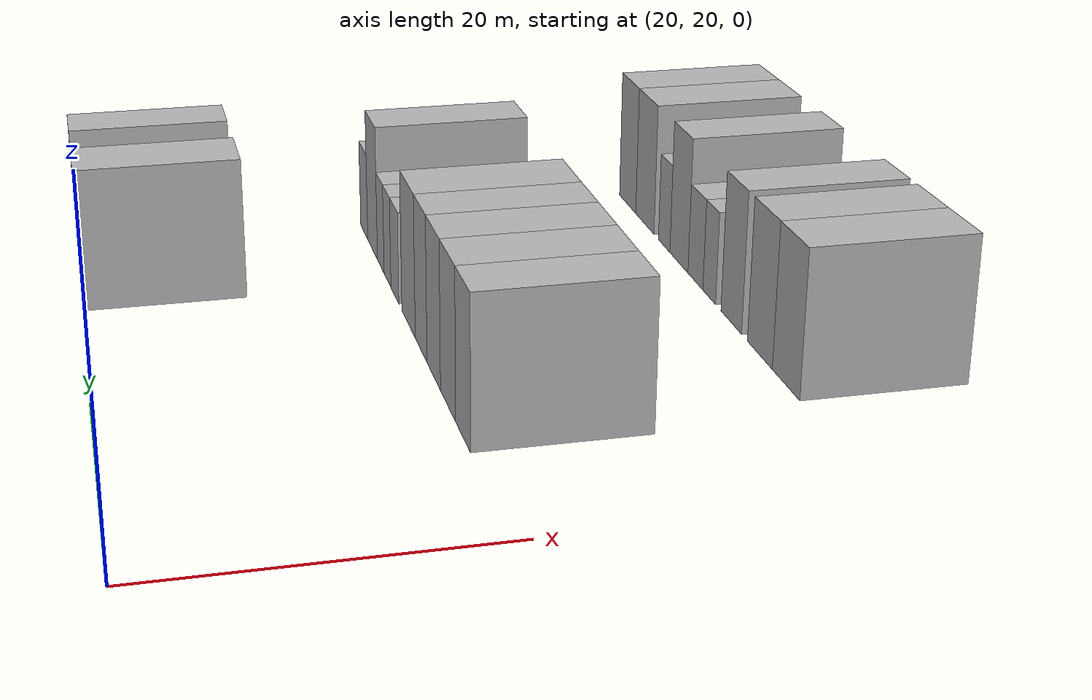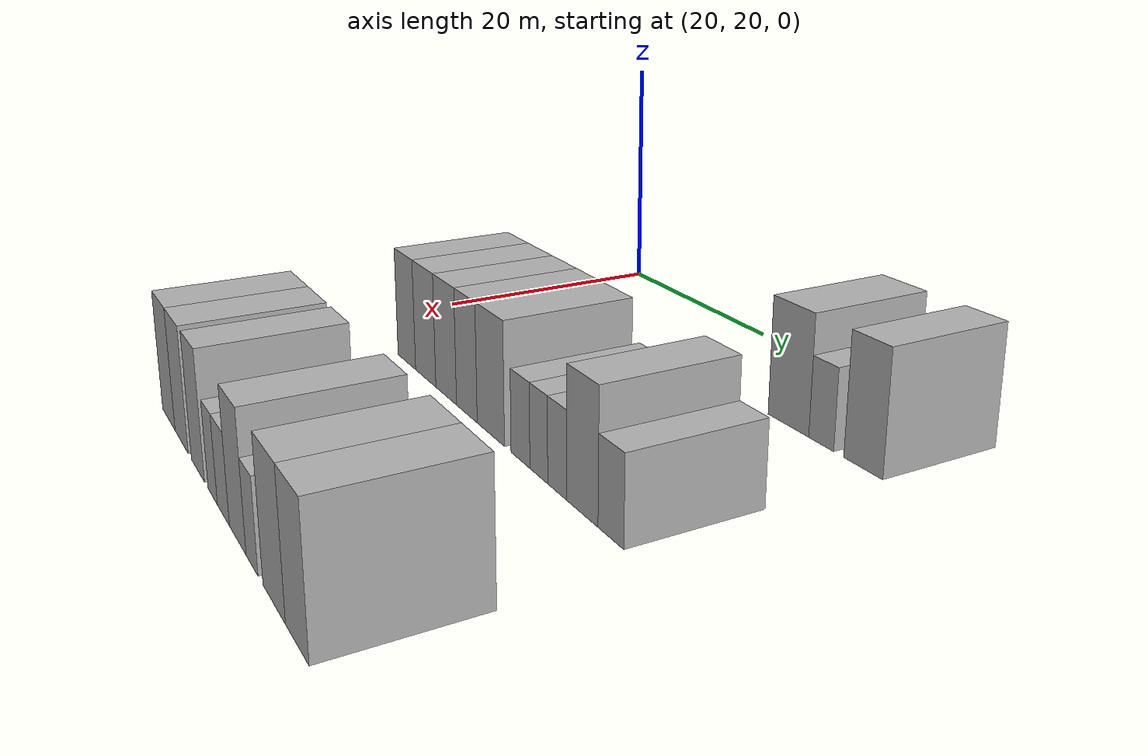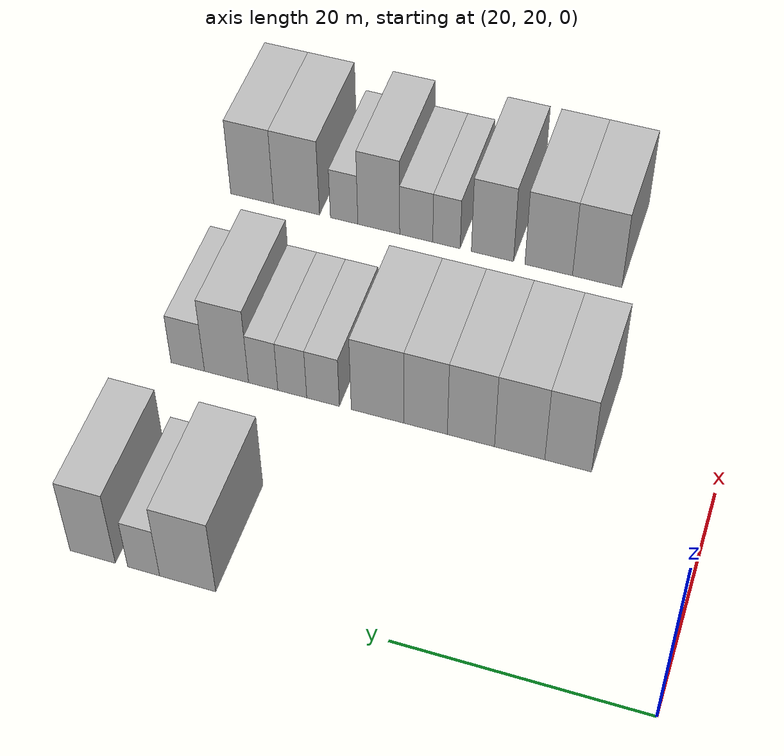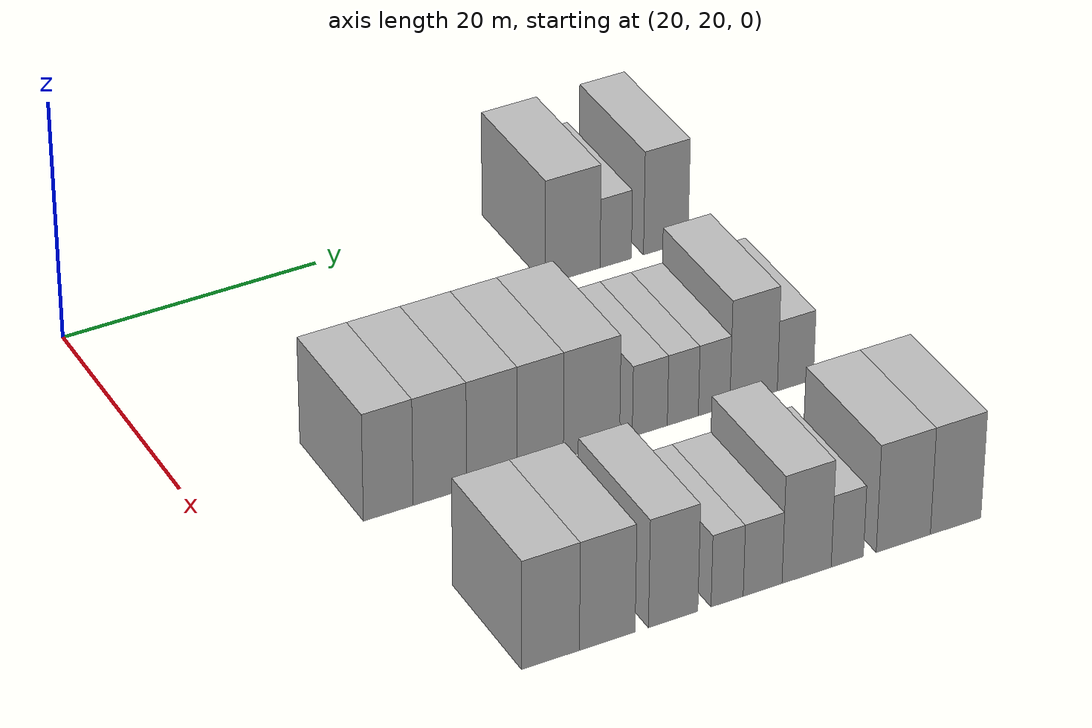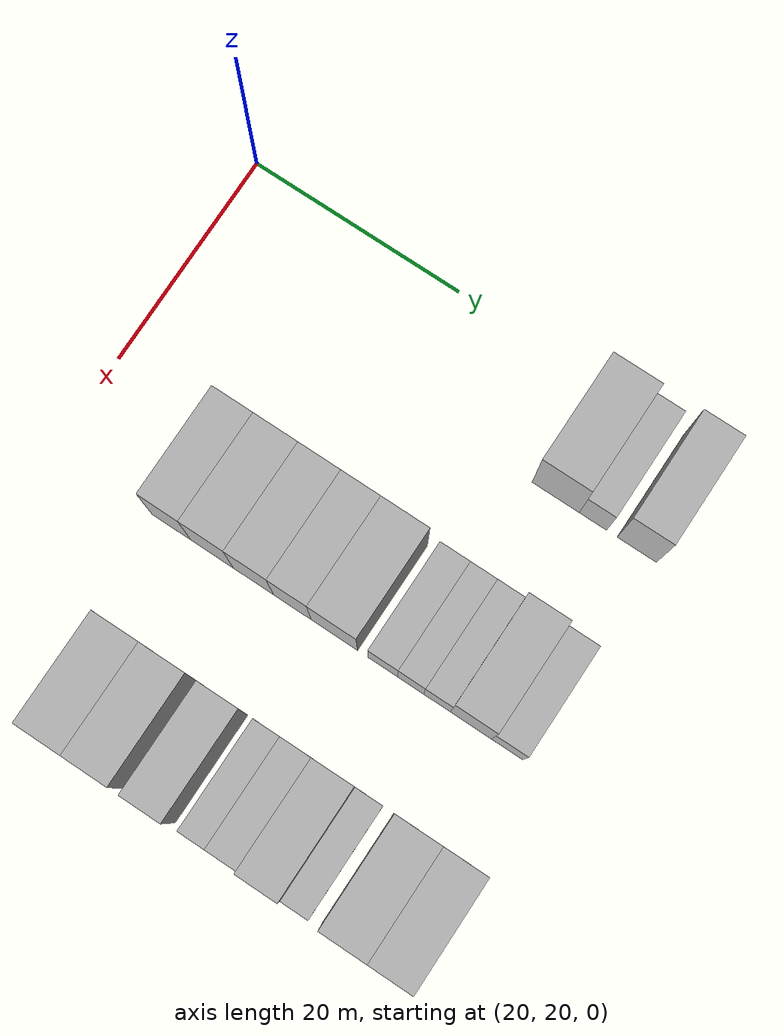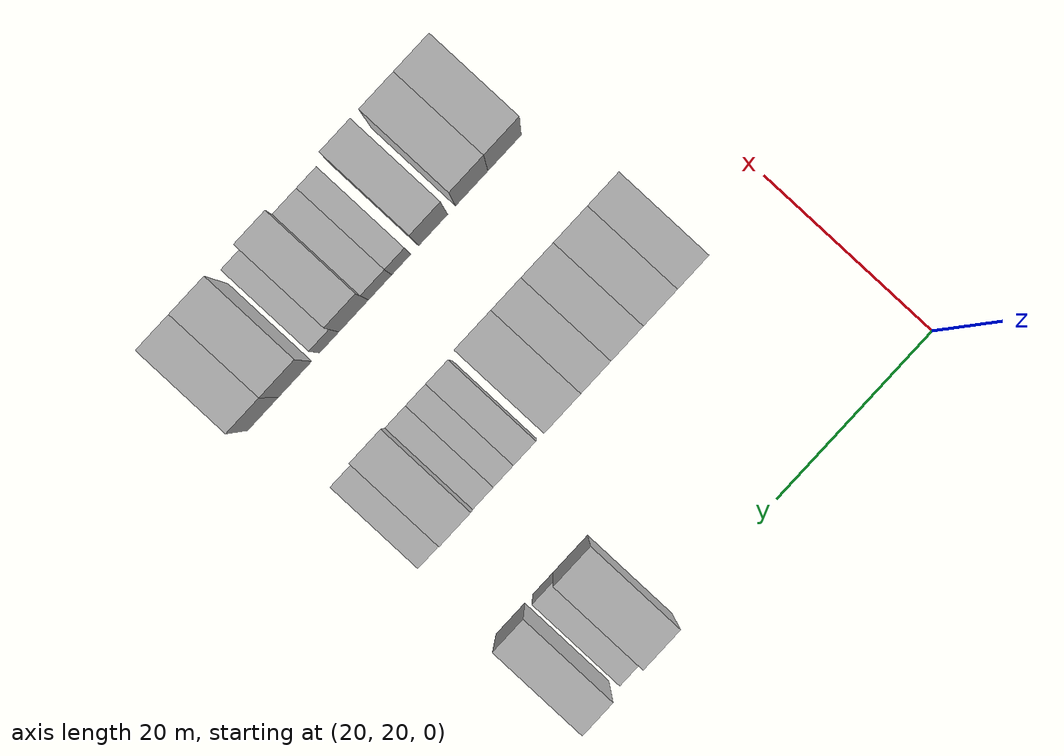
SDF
<sdf version="1.6">
 <world name="default">
  <model name="building_65">
   <static>1</static>
   <pose>25.0000 55.7712 0 0.000000 0.000000 0.000000</pose>
   <link name="link">
    <pose>0 0 4.50 0 0 0</pose>
    <collision name="collision"><geometry><box><size>10.0000 4.4981 9.0000</size></box></geometry></collision>
    <visual name="visual">
     <cast_shadows>0</cast_shadows>
     <geometry><box><size>10.0000 4.4981 9.0000</size></box></geometry>
     <material>
      <script>
       <uri>model://HANNAS_wall/materials/scripts</uri>
       <uri>model://HANNAS_wall/materials/textures</uri>
       <name>vrc/HANNAS_wall</name>
      </script>
     </material>
    </visual>
   </link>
  </model>
  <model name="building_66">
   <static>1</static>
   <pose>25.0000 59.3124 0 0.000000 0.000000 0.000000</pose>
   <link name="link">
    <pose>0 0 3.00 0 0 0</pose>
    <collision name="collision"><geometry><box><size>10.0000 2.5843 6.0000</size></box></geometry></collision>
    <visual name="visual">
     <cast_shadows>0</cast_shadows>
     <geometry><box><size>10.0000 2.5843 6.0000</size></box></geometry>
     <material>
      <script>
       <uri>model://HANNAS_wall/materials/scripts</uri>
       <uri>model://HANNAS_wall/materials/textures</uri>
       <name>vrc/HANNAS_wall</name>
      </script>
     </material>
    </visual>
   </link>
  </model>
  <model name="building_67">
   <static>1</static>
   <pose>25.0000 63.4553 0 0.000000 0.000000 0.000000</pose>
   <link name="link">
    <pose>0 0 4.50 0 0 0</pose>
    <collision name="collision"><geometry><box><size>10.0000 3.7016 9.0000</size></box></geometry></collision>
    <visual name="visual">
     <cast_shadows>0</cast_shadows>
     <geometry><box><size>10.0000 3.7016 9.0000</size></box></geometry>
     <material>
      <script>
       <uri>model://HANNAS_wall/materials/scripts</uri>
       <uri>model://HANNAS_wall/materials/textures</uri>
       <name>vrc/HANNAS_wall</name>
      </script>
     </material>
    </visual>
   </link>
  </model>
  <model name="building_182">
   <static>1</static>
   <pose>44.0000 31.4894 0 0.000000 0.000000 0.000000</pose>
   <link name="link">
    <pose>0 0 4.50 0 0 0</pose>
    <collision name="collision"><geometry><box><size>10.0000 3.7730 9.0000</size></box></geometry></collision>
    <visual name="visual">
     <cast_shadows>0</cast_shadows>
     <geometry><box><size>10.0000 3.7730 9.0000</size></box></geometry>
     <material>
      <script>
       <uri>model://HANNAS_wall/materials/scripts</uri>
       <uri>model://HANNAS_wall/materials/textures</uri>
       <name>vrc/HANNAS_wall</name>
      </script>
     </material>
    </visual>
   </link>
  </model>
  <model name="building_183">
   <static>1</static>
   <pose>44.0000 35.4214 0 0.000000 0.000000 0.000000</pose>
   <link name="link">
    <pose>0 0 4.50 0 0 0</pose>
    <collision name="collision"><geometry><box><size>10.0000 4.0909 9.0000</size></box></geometry></collision>
    <visual name="visual">
     <cast_shadows>0</cast_shadows>
     <geometry><box><size>10.0000 4.0909 9.0000</size></box></geometry>
     <material>
      <script>
       <uri>model://HANNAS_wall/materials/scripts</uri>
       <uri>model://HANNAS_wall/materials/textures</uri>
       <name>vrc/HANNAS_wall</name>
      </script>
     </material>
    </visual>
   </link>
  </model>
  <model name="building_184">
   <static>1</static>
   <pose>44.0000 39.4064 0 0.000000 0.000000 0.000000</pose>
   <link name="link">
    <pose>0 0 4.50 0 0 0</pose>
    <collision name="collision"><geometry><box><size>10.0000 3.8791 9.0000</size></box></geometry></collision>
    <visual name="visual">
     <cast_shadows>0</cast_shadows>
     <geometry><box><size>10.0000 3.8791 9.0000</size></box></geometry>
     <material>
      <script>
       <uri>model://HANNAS_wall/materials/scripts</uri>
       <uri>model://HANNAS_wall/materials/textures</uri>
       <name>vrc/HANNAS_wall</name>
      </script>
     </material>
    </visual>
   </link>
  </model>
  <model name="building_185">
   <static>1</static>
   <pose>44.0000 43.1508 0 0.000000 0.000000 0.000000</pose>
   <link name="link">
    <pose>0 0 4.50 0 0 0</pose>
    <collision name="collision"><geometry><box><size>10.0000 3.6097 9.0000</size></box></geometry></collision>
    <visual name="visual">
     <cast_shadows>0</cast_shadows>
     <geometry><box><size>10.0000 3.6097 9.0000</size></box></geometry>
     <material>
      <script>
       <uri>model://HANNAS_wall/materials/scripts</uri>
       <uri>model://HANNAS_wall/materials/textures</uri>
       <name>vrc/HANNAS_wall</name>
      </script>
     </material>
    </visual>
   </link>
  </model>
  <model name="building_186">
   <static>1</static>
   <pose>44.0000 47.1601 0 0.000000 0.000000 0.000000</pose>
   <link name="link">
    <pose>0 0 4.50 0 0 0</pose>
    <collision name="collision"><geometry><box><size>10.0000 4.4090 9.0000</size></box></geometry></collision>
    <visual name="visual">
     <cast_shadows>0</cast_shadows>
     <geometry><box><size>10.0000 4.4090 9.0000</size></box></geometry>
     <material>
      <script>
       <uri>model://HANNAS_wall/materials/scripts</uri>
       <uri>model://HANNAS_wall/materials/textures</uri>
       <name>vrc/HANNAS_wall</name>
      </script>
     </material>
    </visual>
   </link>
  </model>
  <model name="building_187">
   <static>1</static>
   <pose>44.0000 51.7505 0 0.000000 0.000000 0.000000</pose>
   <link name="link">
    <pose>0 0 3.00 0 0 0</pose>
    <collision name="collision"><geometry><box><size>10.0000 2.7717 6.0000</size></box></geometry></collision>
    <visual name="visual">
     <cast_shadows>0</cast_shadows>
     <geometry><box><size>10.0000 2.7717 6.0000</size></box></geometry>
     <material>
      <script>
       <uri>model://HANNAS_wall/materials/scripts</uri>
       <uri>model://HANNAS_wall/materials/textures</uri>
       <name>vrc/HANNAS_wall</name>
      </script>
     </material>
    </visual>
   </link>
  </model>
  <model name="building_188">
   <static>1</static>
   <pose>44.0000 54.3708 0 0.000000 0.000000 0.000000</pose>
   <link name="link">
    <pose>0 0 3.00 0 0 0</pose>
    <collision name="collision"><geometry><box><size>10.0000 2.4689 6.0000</size></box></geometry></collision>
    <visual name="visual">
     <cast_shadows>0</cast_shadows>
     <geometry><box><size>10.0000 2.4689 6.0000</size></box></geometry>
     <material>
      <script>
       <uri>model://HANNAS_wall/materials/scripts</uri>
       <uri>model://HANNAS_wall/materials/textures</uri>
       <name>vrc/HANNAS_wall</name>
      </script>
     </material>
    </visual>
   </link>
  </model>
  <model name="building_189">
   <static>1</static>
   <pose>44.0000 56.8667 0 0.000000 0.000000 0.000000</pose>
   <link name="link">
    <pose>0 0 3.00 0 0 0</pose>
    <collision name="collision"><geometry><box><size>10.0000 2.5228 6.0000</size></box></geometry></collision>
    <visual name="visual">
     <cast_shadows>0</cast_shadows>
     <geometry><box><size>10.0000 2.5228 6.0000</size></box></geometry>
     <material>
      <script>
       <uri>model://HANNAS_wall/materials/scripts</uri>
       <uri>model://HANNAS_wall/materials/textures</uri>
       <name>vrc/HANNAS_wall</name>
      </script>
     </material>
    </visual>
   </link>
  </model>
  <model name="building_190">
   <static>1</static>
   <pose>44.0000 60.0348 0 0.000000 0.000000 0.000000</pose>
   <link name="link">
    <pose>0 0 4.50 0 0 0</pose>
    <collision name="collision"><geometry><box><size>10.0000 3.8135 9.0000</size></box></geometry></collision>
    <visual name="visual">
     <cast_shadows>0</cast_shadows>
     <geometry><box><size>10.0000 3.8135 9.0000</size></box></geometry>
     <material>
      <script>
       <uri>model://HANNAS_wall/materials/scripts</uri>
       <uri>model://HANNAS_wall/materials/textures</uri>
       <name>vrc/HANNAS_wall</name>
      </script>
     </material>
    </visual>
   </link>
  </model>
  <model name="building_191">
   <static>1</static>
   <pose>44.0000 63.4010 0 0.000000 0.000000 0.000000</pose>
   <link name="link">
    <pose>0 0 3.00 0 0 0</pose>
    <collision name="collision"><geometry><box><size>10.0000 2.9190 6.0000</size></box></geometry></collision>
    <visual name="visual">
     <cast_shadows>0</cast_shadows>
     <geometry><box><size>10.0000 2.9190 6.0000</size></box></geometry>
     <material>
      <script>
       <uri>model://HANNAS_wall/materials/scripts</uri>
       <uri>model://HANNAS_wall/materials/textures</uri>
       <name>vrc/HANNAS_wall</name>
      </script>
     </material>
    </visual>
   </link>
  </model>
  <model name="building_300">
   <static>1</static>
   <pose>63.0000 33.9536 0 0.000000 0.000000 0.000000</pose>
   <link name="link">
    <pose>0 0 4.50 0 0 0</pose>
    <collision name="collision"><geometry><box><size>10.0000 4.2861 9.0000</size></box></geometry></collision>
    <visual name="visual">
     <cast_shadows>0</cast_shadows>
     <geometry><box><size>10.0000 4.2861 9.0000</size></box></geometry>
     <material>
      <script>
       <uri>model://HANNAS_wall/materials/scripts</uri>
       <uri>model://HANNAS_wall/materials/textures</uri>
       <name>vrc/HANNAS_wall</name>
      </script>
     </material>
    </visual>
   </link>
  </model>
  <model name="building_301">
   <static>1</static>
   <pose>63.0000 38.1809 0 0.000000 0.000000 0.000000</pose>
   <link name="link">
    <pose>0 0 4.50 0 0 0</pose>
    <collision name="collision"><geometry><box><size>10.0000 4.1686 9.0000</size></box></geometry></collision>
    <visual name="visual">
     <cast_shadows>0</cast_shadows>
     <geometry><box><size>10.0000 4.1686 9.0000</size></box></geometry>
     <material>
      <script>
       <uri>model://HANNAS_wall/materials/scripts</uri>
       <uri>model://HANNAS_wall/materials/textures</uri>
       <name>vrc/HANNAS_wall</name>
      </script>
     </material>
    </visual>
   </link>
  </model>
  <model name="building_302">
   <static>1</static>
   <pose>63.0000 43.1361 0 0.000000 0.000000 0.000000</pose>
   <link name="link">
    <pose>0 0 4.50 0 0 0</pose>
    <collision name="collision"><geometry><box><size>10.0000 3.7417 9.0000</size></box></geometry></collision>
    <visual name="visual">
     <cast_shadows>0</cast_shadows>
     <geometry><box><size>10.0000 3.7417 9.0000</size></box></geometry>
     <material>
      <script>
       <uri>model://HANNAS_wall/materials/scripts</uri>
       <uri>model://HANNAS_wall/materials/textures</uri>
       <name>vrc/HANNAS_wall</name>
      </script>
     </material>
    </visual>
   </link>
  </model>
  <model name="building_303">
   <static>1</static>
   <pose>63.0000 47.2343 0 0.000000 0.000000 0.000000</pose>
   <link name="link">
    <pose>0 0 3.00 0 0 0</pose>
    <collision name="collision"><geometry><box><size>10.0000 2.4547 6.0000</size></box></geometry></collision>
    <visual name="visual">
     <cast_shadows>0</cast_shadows>
     <geometry><box><size>10.0000 2.4547 6.0000</size></box></geometry>
     <material>
      <script>
       <uri>model://HANNAS_wall/materials/scripts</uri>
       <uri>model://HANNAS_wall/materials/textures</uri>
       <name>vrc/HANNAS_wall</name>
      </script>
     </material>
    </visual>
   </link>
  </model>
  <model name="building_304">
   <static>1</static>
   <pose>63.0000 49.9509 0 0.000000 0.000000 0.000000</pose>
   <link name="link">
    <pose>0 0 3.00 0 0 0</pose>
    <collision name="collision"><geometry><box><size>10.0000 2.9786 6.0000</size></box></geometry></collision>
    <visual name="visual">
     <cast_shadows>0</cast_shadows>
     <geometry><box><size>10.0000 2.9786 6.0000</size></box></geometry>
     <material>
      <script>
       <uri>model://HANNAS_wall/materials/scripts</uri>
       <uri>model://HANNAS_wall/materials/textures</uri>
       <name>vrc/HANNAS_wall</name>
      </script>
     </material>
    </visual>
   </link>
  </model>
  <model name="building_305">
   <static>1</static>
   <pose>63.0000 53.3408 0 0.000000 0.000000 0.000000</pose>
   <link name="link">
    <pose>0 0 4.50 0 0 0</pose>
    <collision name="collision"><geometry><box><size>10.0000 3.8012 9.0000</size></box></geometry></collision>
    <visual name="visual">
     <cast_shadows>0</cast_shadows>
     <geometry><box><size>10.0000 3.8012 9.0000</size></box></geometry>
     <material>
      <script>
       <uri>model://HANNAS_wall/materials/scripts</uri>
       <uri>model://HANNAS_wall/materials/textures</uri>
       <name>vrc/HANNAS_wall</name>
      </script>
     </material>
    </visual>
   </link>
  </model>
  <model name="building_306">
   <static>1</static>
   <pose>63.0000 56.4946 0 0.000000 0.000000 0.000000</pose>
   <link name="link">
    <pose>0 0 3.00 0 0 0</pose>
    <collision name="collision"><geometry><box><size>10.0000 2.5064 6.0000</size></box></geometry></collision>
    <visual name="visual">
     <cast_shadows>0</cast_shadows>
     <geometry><box><size>10.0000 2.5064 6.0000</size></box></geometry>
     <material>
      <script>
       <uri>model://HANNAS_wall/materials/scripts</uri>
       <uri>model://HANNAS_wall/materials/textures</uri>
       <name>vrc/HANNAS_wall</name>
      </script>
     </material>
    </visual>
   </link>
  </model>
  <model name="building_307">
   <static>1</static>
   <pose>63.0000 60.8752 0 0.000000 0.000000 0.000000</pose>
   <link name="link">
    <pose>0 0 4.50 0 0 0</pose>
    <collision name="collision"><geometry><box><size>10.0000 4.2548 9.0000</size></box></geometry></collision>
    <visual name="visual">
     <cast_shadows>0</cast_shadows>
     <geometry><box><size>10.0000 4.2548 9.0000</size></box></geometry>
     <material>
      <script>
       <uri>model://HANNAS_wall/materials/scripts</uri>
       <uri>model://HANNAS_wall/materials/textures</uri>
       <name>vrc/HANNAS_wall</name>
      </script>
     </material>
    </visual>
   </link>
  </model>
  <model name="building_308">
   <static>1</static>
   <pose>63.0000 64.9980 0 0.000000 0.000000 0.000000</pose>
   <link name="link">
    <pose>0 0 4.50 0 0 0</pose>
    <collision name="collision"><geometry><box><size>10.0000 3.9908 9.0000</size></box></geometry></collision>
    <visual name="visual">
     <cast_shadows>0</cast_shadows>
     <geometry><box><size>10.0000 3.9908 9.0000</size></box></geometry>
     <material>
      <script>
       <uri>model://HANNAS_wall/materials/scripts</uri>
       <uri>model://HANNAS_wall/materials/textures</uri>
       <name>vrc/HANNAS_wall</name>
      </script>
     </material>
    </visual>
   </link>
  </model>
 </world>
</sdf>
